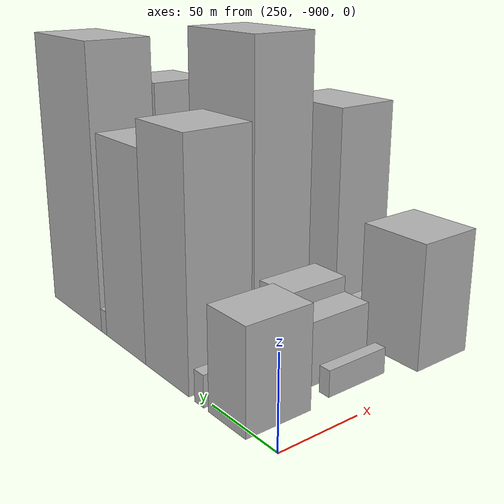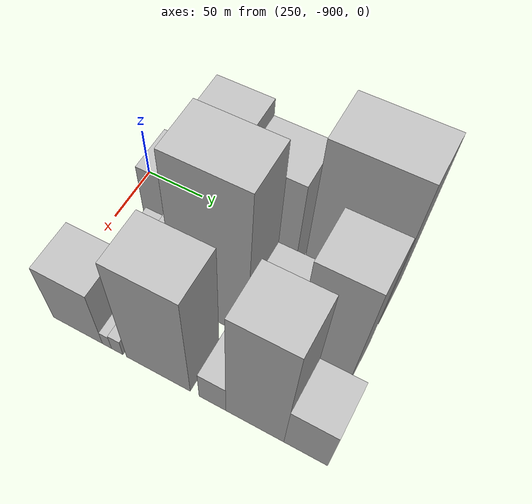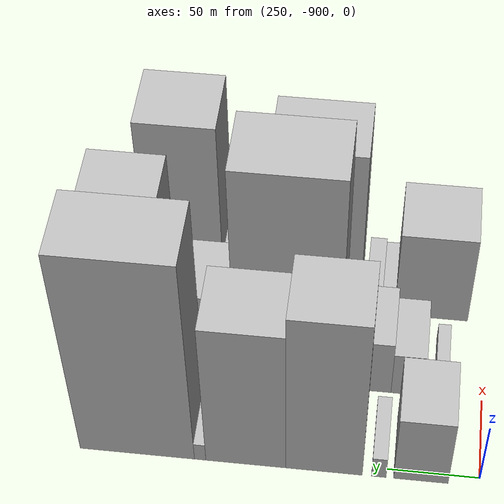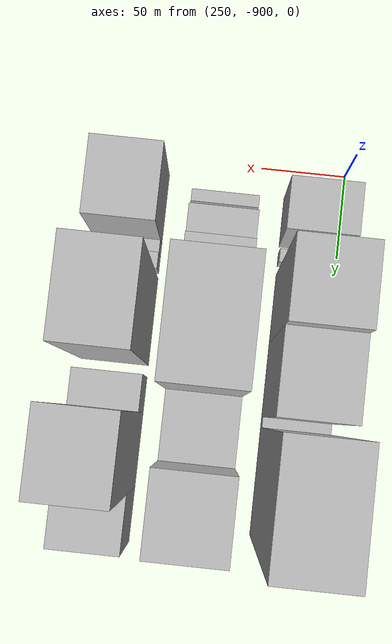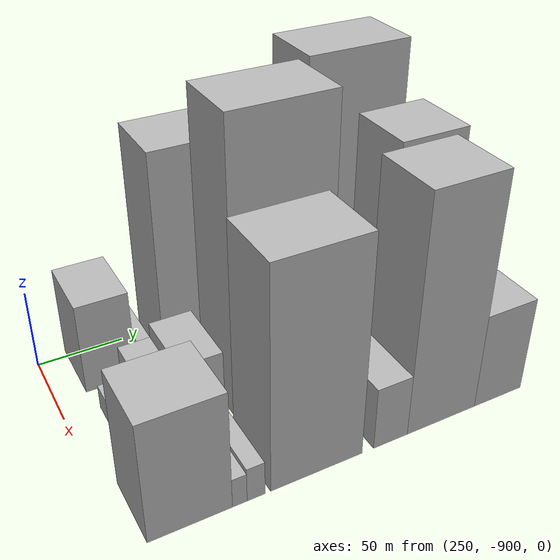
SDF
<sdf version="1.6">
 <world name="default">
  <model name="building_156">
   <static>1</static>
   <pose>265.0000 -868.2908 0 0.000000 0.000000 0.000000</pose>
   <link name="link">
    <pose>0 0 28.50 0 0 0</pose>
    <collision name="collision"><geometry><box><size>40.0000 29.4184 57.0000</size></box></geometry></collision>
    <visual name="visual">
     <cast_shadows>0</cast_shadows>
     <geometry><box><size>40.0000 29.4184 57.0000</size></box></geometry>
     <material>
      <script>
       <uri>model://HANNAS_wall/materials/scripts</uri>
       <uri>model://HANNAS_wall/materials/textures</uri>
       <name>vrc/HANNAS_wall</name>
      </script>
     </material>
    </visual>
   </link>
  </model>
  <model name="building_157">
   <static>1</static>
   <pose>265.0000 -845.6279 0 0.000000 0.000000 0.000000</pose>
   <link name="link">
    <pose>0 0 9.00 0 0 0</pose>
    <collision name="collision"><geometry><box><size>40.0000 7.9073 18.0000</size></box></geometry></collision>
    <visual name="visual">
     <cast_shadows>0</cast_shadows>
     <geometry><box><size>40.0000 7.9073 18.0000</size></box></geometry>
     <material>
      <script>
       <uri>model://HANNAS_wall/materials/scripts</uri>
       <uri>model://HANNAS_wall/materials/textures</uri>
       <name>vrc/HANNAS_wall</name>
      </script>
     </material>
    </visual>
   </link>
  </model>
  <model name="building_158">
   <static>1</static>
   <pose>265.0000 -815.8304 0 0.000000 0.000000 0.000000</pose>
   <link name="link">
    <pose>0 0 67.50 0 0 0</pose>
    <collision name="collision"><geometry><box><size>40.0000 41.6878 135.0000</size></box></geometry></collision>
    <visual name="visual">
     <cast_shadows>0</cast_shadows>
     <geometry><box><size>40.0000 41.6878 135.0000</size></box></geometry>
     <material>
      <script>
       <uri>model://HANNAS_wall/materials/scripts</uri>
       <uri>model://HANNAS_wall/materials/textures</uri>
       <name>vrc/HANNAS_wall</name>
      </script>
     </material>
    </visual>
   </link>
  </model>
  <model name="building_159">
   <static>1</static>
   <pose>265.0000 -773.1624 0 0.000000 0.000000 0.000000</pose>
   <link name="link">
    <pose>0 0 60.00 0 0 0</pose>
    <collision name="collision"><geometry><box><size>40.0000 43.6480 120.0000</size></box></geometry></collision>
    <visual name="visual">
     <cast_shadows>0</cast_shadows>
     <geometry><box><size>40.0000 43.6480 120.0000</size></box></geometry>
     <material>
      <script>
       <uri>model://HANNAS_wall/materials/scripts</uri>
       <uri>model://HANNAS_wall/materials/textures</uri>
       <name>vrc/HANNAS_wall</name>
      </script>
     </material>
    </visual>
   </link>
  </model>
  <model name="building_160">
   <static>1</static>
   <pose>265.0000 -748.2103 0 0.000000 0.000000 0.000000</pose>
   <link name="link">
    <pose>0 0 7.50 0 0 0</pose>
    <collision name="collision"><geometry><box><size>40.0000 6.2563 15.0000</size></box></geometry></collision>
    <visual name="visual">
     <cast_shadows>0</cast_shadows>
     <geometry><box><size>40.0000 6.2563 15.0000</size></box></geometry>
     <material>
      <script>
       <uri>model://HANNAS_wall/materials/scripts</uri>
       <uri>model://HANNAS_wall/materials/textures</uri>
       <name>vrc/HANNAS_wall</name>
      </script>
     </material>
    </visual>
   </link>
  </model>
  <model name="building_161">
   <static>1</static>
   <pose>265.0000 -713.4798 0 0.000000 0.000000 0.000000</pose>
   <link name="link">
    <pose>0 0 84.00 0 0 0</pose>
    <collision name="collision"><geometry><box><size>40.0000 63.2047 168.0000</size></box></geometry></collision>
    <visual name="visual">
     <cast_shadows>0</cast_shadows>
     <geometry><box><size>40.0000 63.2047 168.0000</size></box></geometry>
     <material>
      <script>
       <uri>model://HANNAS_wall/materials/scripts</uri>
       <uri>model://HANNAS_wall/materials/textures</uri>
       <name>vrc/HANNAS_wall</name>
      </script>
     </material>
    </visual>
   </link>
  </model>
  <model name="building_206">
   <static>1</static>
   <pose>320.0000 -876.3824 0 0.000000 0.000000 0.000000</pose>
   <link name="link">
    <pose>0 0 7.50 0 0 0</pose>
    <collision name="collision"><geometry><box><size>40.0000 7.2353 15.0000</size></box></geometry></collision>
    <visual name="visual">
     <cast_shadows>0</cast_shadows>
     <geometry><box><size>40.0000 7.2353 15.0000</size></box></geometry>
     <material>
      <script>
       <uri>model://HANNAS_wall/materials/scripts</uri>
       <uri>model://HANNAS_wall/materials/textures</uri>
       <name>vrc/HANNAS_wall</name>
      </script>
     </material>
    </visual>
   </link>
  </model>
  <model name="building_207">
   <static>1</static>
   <pose>320.0000 -857.7135 0 0.000000 0.000000 0.000000</pose>
   <link name="link">
    <pose>0 0 18.00 0 0 0</pose>
    <collision name="collision"><geometry><box><size>40.0000 18.1024 36.0000</size></box></geometry></collision>
    <visual name="visual">
     <cast_shadows>0</cast_shadows>
     <geometry><box><size>40.0000 18.1024 36.0000</size></box></geometry>
     <material>
      <script>
       <uri>model://HANNAS_wall/materials/scripts</uri>
       <uri>model://HANNAS_wall/materials/textures</uri>
       <name>vrc/HANNAS_wall</name>
      </script>
     </material>
    </visual>
   </link>
  </model>
  <model name="building_208">
   <static>1</static>
   <pose>320.0000 -836.5728 0 0.000000 0.000000 0.000000</pose>
   <link name="link">
    <pose>0 0 22.50 0 0 0</pose>
    <collision name="collision"><geometry><box><size>40.0000 24.1791 45.0000</size></box></geometry></collision>
    <visual name="visual">
     <cast_shadows>0</cast_shadows>
     <geometry><box><size>40.0000 24.1791 45.0000</size></box></geometry>
     <material>
      <script>
       <uri>model://HANNAS_wall/materials/scripts</uri>
       <uri>model://HANNAS_wall/materials/textures</uri>
       <name>vrc/HANNAS_wall</name>
      </script>
     </material>
    </visual>
   </link>
  </model>
  <model name="building_209">
   <static>1</static>
   <pose>320.0000 -789.8288 0 0.000000 0.000000 0.000000</pose>
   <link name="link">
    <pose>0 0 87.00 0 0 0</pose>
    <collision name="collision"><geometry><box><size>40.0000 59.3088 174.0000</size></box></geometry></collision>
    <visual name="visual">
     <cast_shadows>0</cast_shadows>
     <geometry><box><size>40.0000 59.3088 174.0000</size></box></geometry>
     <material>
      <script>
       <uri>model://HANNAS_wall/materials/scripts</uri>
       <uri>model://HANNAS_wall/materials/textures</uri>
       <name>vrc/HANNAS_wall</name>
      </script>
     </material>
    </visual>
   </link>
  </model>
  <model name="building_210">
   <static>1</static>
   <pose>320.0000 -741.5971 0 0.000000 0.000000 0.000000</pose>
   <link name="link">
    <pose>0 0 36.00 0 0 0</pose>
    <collision name="collision"><geometry><box><size>40.0000 37.1547 72.0000</size></box></geometry></collision>
    <visual name="visual">
     <cast_shadows>0</cast_shadows>
     <geometry><box><size>40.0000 37.1547 72.0000</size></box></geometry>
     <material>
      <script>
       <uri>model://HANNAS_wall/materials/scripts</uri>
       <uri>model://HANNAS_wall/materials/textures</uri>
       <name>vrc/HANNAS_wall</name>
      </script>
     </material>
    </visual>
   </link>
  </model>
  <model name="building_211">
   <static>1</static>
   <pose>320.0000 -702.3172 0 0.000000 0.000000 0.000000</pose>
   <link name="link">
    <pose>0 0 69.00 0 0 0</pose>
    <collision name="collision"><geometry><box><size>40.0000 41.4053 138.0000</size></box></geometry></collision>
    <visual name="visual">
     <cast_shadows>0</cast_shadows>
     <geometry><box><size>40.0000 41.4053 138.0000</size></box></geometry>
     <material>
      <script>
       <uri>model://HANNAS_wall/materials/scripts</uri>
       <uri>model://HANNAS_wall/materials/textures</uri>
       <name>vrc/HANNAS_wall</name>
      </script>
     </material>
    </visual>
   </link>
  </model>
  <model name="building_259">
   <static>1</static>
   <pose>375.0000 -868.5792 0 0.000000 0.000000 0.000000</pose>
   <link name="link">
    <pose>0 0 36.00 0 0 0</pose>
    <collision name="collision"><geometry><box><size>40.0000 42.8416 72.0000</size></box></geometry></collision>
    <visual name="visual">
     <cast_shadows>0</cast_shadows>
     <geometry><box><size>40.0000 42.8416 72.0000</size></box></geometry>
     <material>
      <script>
       <uri>model://HANNAS_wall/materials/scripts</uri>
       <uri>model://HANNAS_wall/materials/textures</uri>
       <name>vrc/HANNAS_wall</name>
      </script>
     </material>
    </visual>
   </link>
  </model>
  <model name="building_260">
   <static>1</static>
   <pose>375.0000 -843.2786 0 0.000000 0.000000 0.000000</pose>
   <link name="link">
    <pose>0 0 9.00 0 0 0</pose>
    <collision name="collision"><geometry><box><size>40.0000 7.7595 18.0000</size></box></geometry></collision>
    <visual name="visual">
     <cast_shadows>0</cast_shadows>
     <geometry><box><size>40.0000 7.7595 18.0000</size></box></geometry>
     <material>
      <script>
       <uri>model://HANNAS_wall/materials/scripts</uri>
       <uri>model://HANNAS_wall/materials/textures</uri>
       <name>vrc/HANNAS_wall</name>
      </script>
     </material>
    </visual>
   </link>
  </model>
  <model name="building_261">
   <static>1</static>
   <pose>375.0000 -834.5866 0 0.000000 0.000000 0.000000</pose>
   <link name="link">
    <pose>0 0 10.50 0 0 0</pose>
    <collision name="collision"><geometry><box><size>40.0000 9.6244 21.0000</size></box></geometry></collision>
    <visual name="visual">
     <cast_shadows>0</cast_shadows>
     <geometry><box><size>40.0000 9.6244 21.0000</size></box></geometry>
     <material>
      <script>
       <uri>model://HANNAS_wall/materials/scripts</uri>
       <uri>model://HANNAS_wall/materials/textures</uri>
       <name>vrc/HANNAS_wall</name>
      </script>
     </material>
    </visual>
   </link>
  </model>
  <model name="building_262">
   <static>1</static>
   <pose>375.0000 -800.6245 0 0.000000 0.000000 0.000000</pose>
   <link name="link">
    <pose>0 0 66.00 0 0 0</pose>
    <collision name="collision"><geometry><box><size>40.0000 52.3000 132.0000</size></box></geometry></collision>
    <visual name="visual">
     <cast_shadows>0</cast_shadows>
     <geometry><box><size>40.0000 52.3000 132.0000</size></box></geometry>
     <material>
      <script>
       <uri>model://HANNAS_wall/materials/scripts</uri>
       <uri>model://HANNAS_wall/materials/textures</uri>
       <name>vrc/HANNAS_wall</name>
      </script>
     </material>
    </visual>
   </link>
  </model>
  <model name="building_263">
   <static>1</static>
   <pose>375.0000 -757.0307 0 0.000000 0.000000 0.000000</pose>
   <link name="link">
    <pose>0 0 19.50 0 0 0</pose>
    <collision name="collision"><geometry><box><size>40.0000 20.8876 39.0000</size></box></geometry></collision>
    <visual name="visual">
     <cast_shadows>0</cast_shadows>
     <geometry><box><size>40.0000 20.8876 39.0000</size></box></geometry>
     <material>
      <script>
       <uri>model://HANNAS_wall/materials/scripts</uri>
       <uri>model://HANNAS_wall/materials/textures</uri>
       <name>vrc/HANNAS_wall</name>
      </script>
     </material>
    </visual>
   </link>
  </model>
  <model name="building_264">
   <static>1</static>
   <pose>375.0000 -724.5255 0 0.000000 0.000000 0.000000</pose>
   <link name="link">
    <pose>0 0 72.00 0 0 0</pose>
    <collision name="collision"><geometry><box><size>40.0000 44.1227 144.0000</size></box></geometry></collision>
    <visual name="visual">
     <cast_shadows>0</cast_shadows>
     <geometry><box><size>40.0000 44.1227 144.0000</size></box></geometry>
     <material>
      <script>
       <uri>model://HANNAS_wall/materials/scripts</uri>
       <uri>model://HANNAS_wall/materials/textures</uri>
       <name>vrc/HANNAS_wall</name>
      </script>
     </material>
    </visual>
   </link>
  </model>
  <model name="building_265">
   <static>1</static>
   <pose>375.0000 -686.3757 0 0.000000 0.000000 0.000000</pose>
   <link name="link">
    <pose>0 0 30.00 0 0 0</pose>
    <collision name="collision"><geometry><box><size>40.0000 32.1769 60.0000</size></box></geometry></collision>
    <visual name="visual">
     <cast_shadows>0</cast_shadows>
     <geometry><box><size>40.0000 32.1769 60.0000</size></box></geometry>
     <material>
      <script>
       <uri>model://HANNAS_wall/materials/scripts</uri>
       <uri>model://HANNAS_wall/materials/textures</uri>
       <name>vrc/HANNAS_wall</name>
      </script>
     </material>
    </visual>
   </link>
  </model>
 </world>
</sdf>
